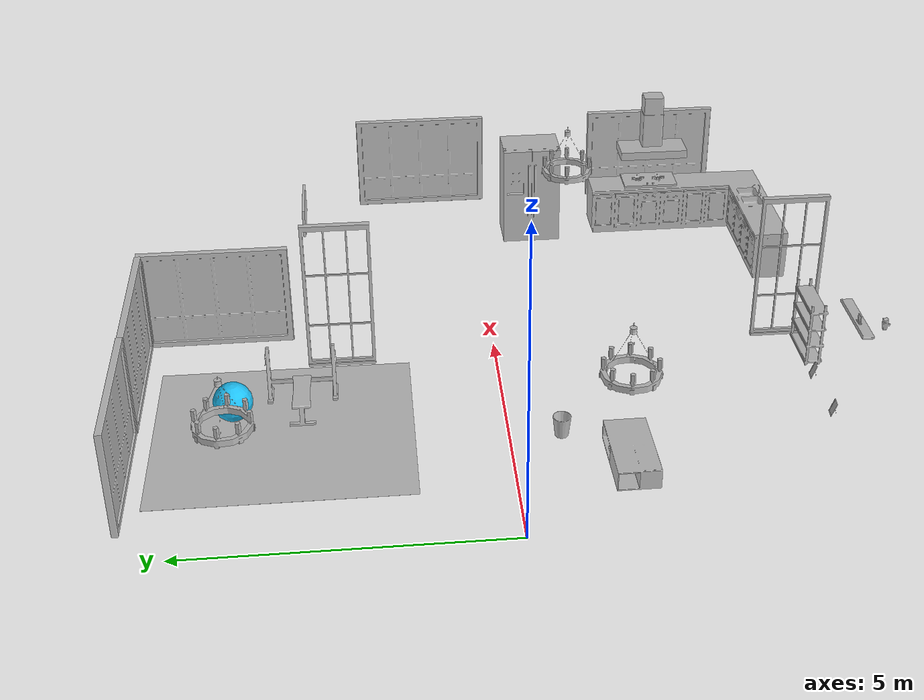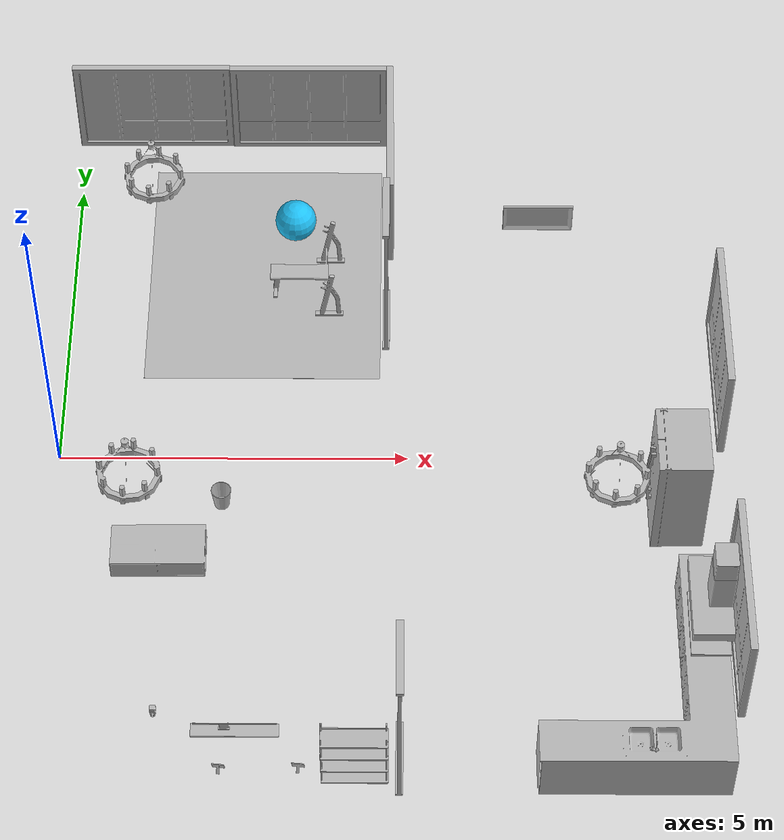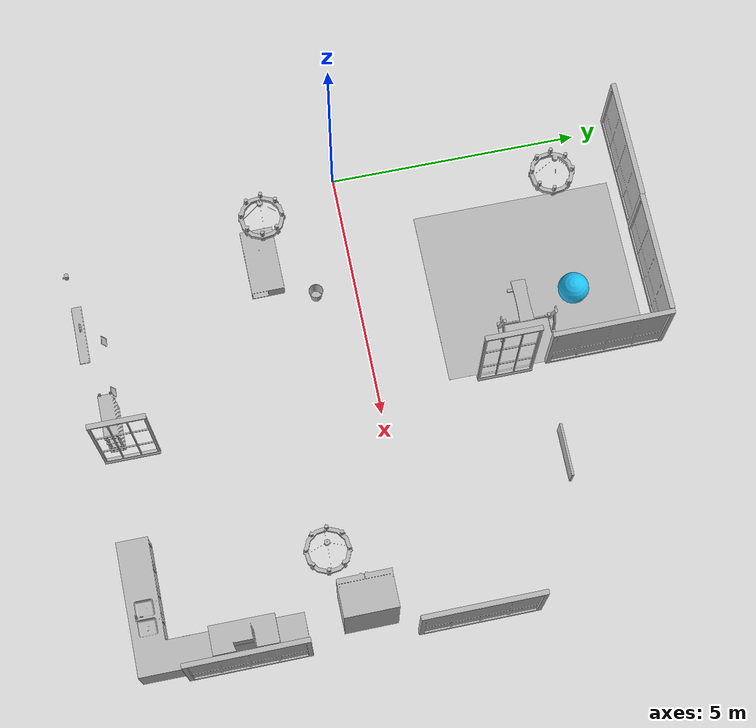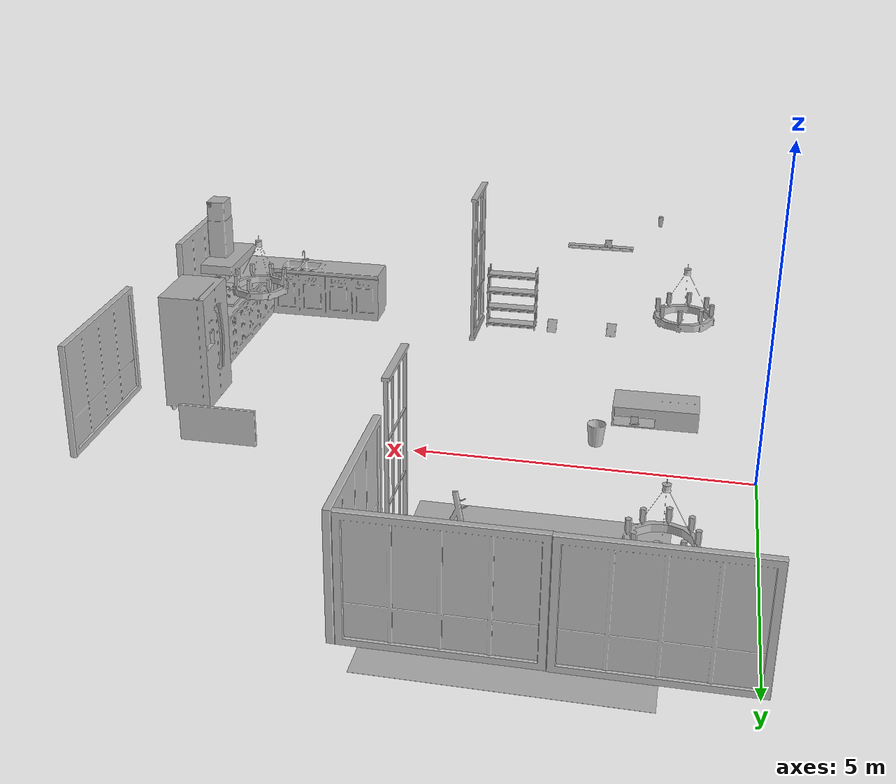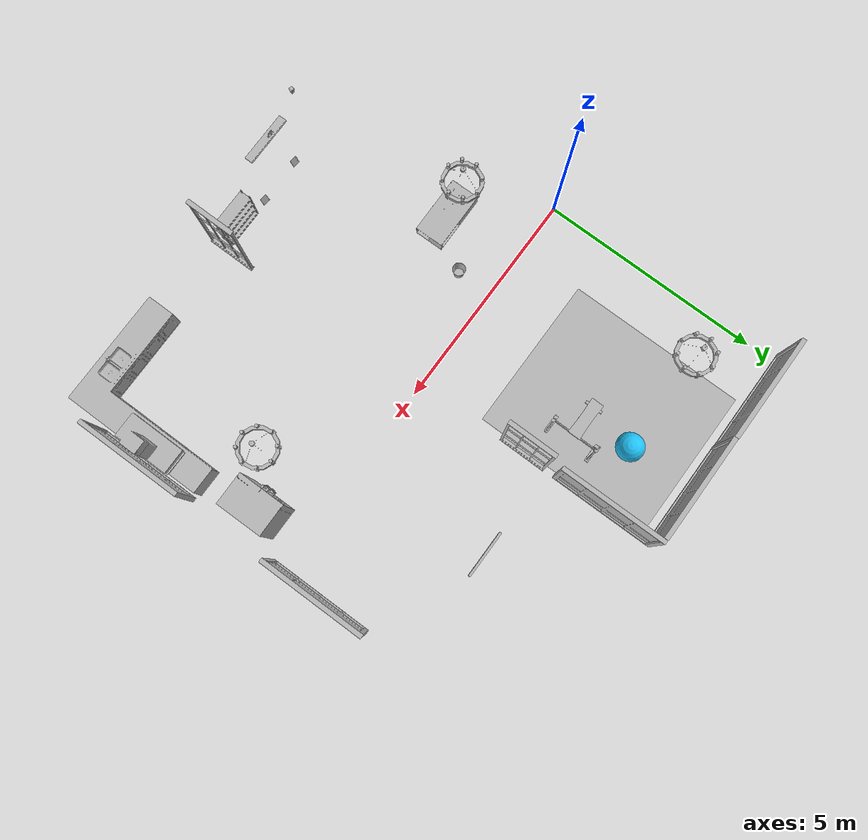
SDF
<sdf version="1.6">
 <world name="default">
  <model name="Ball_01_001">
   <link name="aws_robomaker_residential_Ball_01::link">
    <inertial>
     <mass>0.12</mass>
     <inertia>
      <ixx>0.030752</ixx>
      <ixy>0</ixy>
      <ixz>0</ixz>
      <iyy>0.030752</iyy>
      <iyz>0</iyz>
      <izz>0.030752</izz>
     </inertia>
    </inertial>
    <collision name="collision">
     <geometry><sphere><radius>0.31</radius></sphere></geometry>
     <surface>
      <friction><ode><mu>0.85</mu><mu2>0.85</mu2></ode></friction>
      <contact><ode><kd>8500</kd><max_vel>5.1</max_vel></ode></contact>
     </surface>
    </collision>
    <visual name="visual">
     <geometry><sphere><radius>0.31</radius></sphere></geometry>
     <material><diffuse>0.12 0.76 0.97 1</diffuse><ambient>0.03 0.21 0.27 1</ambient></material>
     <meta><layer>1</layer></meta>
    </visual>
   </link>
   <pose>3.2955 4.22567 0.31 0 -0 0</pose>
  </model>
  <model name="Board_01_001">
   <link name="aws_robomaker_residential_Board_01::link">
    <inertial><mass>1</mass></inertial>
    <collision name="collision">
     <geometry>
      <mesh>
       <uri>file://models/aws_robomaker_residential_Board_01/meshes/aws_Board_01_collision.DAE</uri>
       <scale>1 1 1</scale>
      </mesh>
     </geometry>
    </collision>
    <visual name="visual">
     <geometry>
      <mesh><uri>file://models/aws_robomaker_residential_Board_01/meshes/aws_Board_01_visual.DAE</uri></mesh>
     </geometry>
     <meta><layer>2</layer></meta>
    </visual>
   </link>
   <static>1</static>
   <pose>2.77907 -5.3927 1.53817 0 -0 0</pose>
  </model>
  <model name="Chandelier_01_001">
   <link name="aws_robomaker_residential_Chandelier_01::link">
    <inertial><mass>1</mass></inertial>
    <collision name="collision">
     <geometry>
      <mesh>
       <uri>file://models/aws_robomaker_residential_Chandelier_01/meshes/aws_Chandelier_01_collision.DAE</uri>
       <scale>1 1 1</scale>
      </mesh>
     </geometry>
    </collision>
    <visual name="visual">
     <geometry>
      <mesh>
       <uri>file://models/aws_robomaker_residential_Chandelier_01/meshes/aws_Chandelier_01_visual.DAE</uri>
      </mesh>
     </geometry>
     <meta><layer>2</layer></meta>
    </visual>
   </link>
   <static>1</static>
   <pose>1.22106 4.15574 1.295 0 -0 0</pose>
  </model>
  <model name="Chandelier_01_003">
   <link name="aws_robomaker_residential_Chandelier_01::link">
    <inertial><mass>1</mass></inertial>
    <collision name="collision">
     <geometry>
      <mesh>
       <uri>file://models/aws_robomaker_residential_Chandelier_01/meshes/aws_Chandelier_01_collision.DAE</uri>
       <scale>1 1 1</scale>
      </mesh>
     </geometry>
    </collision>
    <visual name="visual">
     <geometry>
      <mesh>
       <uri>file://models/aws_robomaker_residential_Chandelier_01/meshes/aws_Chandelier_01_visual.DAE</uri>
      </mesh>
     </geometry>
     <meta><layer>2</layer></meta>
    </visual>
   </link>
   <static>1</static>
   <pose>7.82406 -1.59 1.751 0 -0 0</pose>
  </model>
  <model name="Chandelier_01_004">
   <link name="aws_robomaker_residential_Chandelier_01::link">
    <inertial><mass>1</mass></inertial>
    <collision name="collision">
     <geometry>
      <mesh>
       <uri>file://models/aws_robomaker_residential_Chandelier_01/meshes/aws_Chandelier_01_collision.DAE</uri>
       <scale>1 1 1</scale>
      </mesh>
     </geometry>
    </collision>
    <visual name="visual">
     <geometry>
      <mesh>
       <uri>file://models/aws_robomaker_residential_Chandelier_01/meshes/aws_Chandelier_01_visual.DAE</uri>
      </mesh>
     </geometry>
     <meta><layer>2</layer></meta>
    </visual>
   </link>
   <static>1</static>
   <pose>1.22106 -1.59204 1.7873 0 -0 0</pose>
  </model>
  <model name="Carpet_01_002">
   <link name="aws_robomaker_residential_Carpet_01::link">
    <inertial><mass>8.1</mass></inertial>
    <collision name="collision">
     <geometry>
      <mesh>
       <uri>file://models/aws_robomaker_residential_Carpet_01/meshes/aws_Carpet_01_collision.DAE</uri>
       <scale>1 1 0.95</scale>
      </mesh>
     </geometry>
     <pose>0 0 -0.01 0 -0 0</pose>
    </collision>
    <visual name="visual">
     <geometry>
      <mesh><uri>file://models/aws_robomaker_residential_Carpet_01/meshes/aws_Carpet_01_visual.DAE</uri></mesh>
     </geometry>
     <meta><layer>1</layer></meta>
    </visual>
   </link>
   <static>1</static>
   <pose>2.85405 3.45 0.000585 0 -0 0</pose>
  </model>
  <model name="CoffeeTable_01_001">
   <link name="aws_robomaker_residential_CoffeeTable_01::link">
    <inertial>
     <mass>21.7</mass>
     <inertia><ixx>0.81375</ixx><ixy>0</ixy><ixz>0</ixz><iyy>2.76675</iyy><iyz>0</iyz><izz>3.254</izz></inertia>
    </inertial>
    <collision name="collision">
     <geometry>
      <mesh>
       <uri>file://models/aws_robomaker_residential_CoffeeTable_01/meshes/aws_CoffeeTable_01_collision.DAE</uri>
       <scale>1 1 1</scale>
      </mesh>
     </geometry>
     <surface><contact><ode><max_vel>0.01</max_vel></ode></contact></surface>
    </collision>
    <visual name="visual">
     <geometry>
      <mesh>
       <uri>file://models/aws_robomaker_residential_CoffeeTable_01/meshes/aws_CoffeeTable_01_visual.DAE</uri>
      </mesh>
     </geometry>
     <meta><layer>1</layer></meta>
    </visual>
   </link>
   <static>1</static>
   <pose>1.5123 -1.73344 0.041983 0 -0 0.01</pose>
  </model>
  <model name="CookingBench_01_001">
   <link name="aws_robomaker_residential_CookingBench_01::link">
    <inertial><mass>1</mass></inertial>
    <collision name="collision">
     <geometry>
      <mesh>
       <uri>file://models/aws_robomaker_residential_CookingBench_01/meshes/aws_CookingBench_01_collision.DAE</uri>
       <scale>1 1 1</scale>
      </mesh>
     </geometry>
    </collision>
    <visual name="visual">
     <geometry>
      <mesh>
       <uri>file://models/aws_robomaker_residential_CookingBench_01/meshes/aws_CookingBench_01_visual.DAE</uri>
      </mesh>
     </geometry>
     <meta><layer>1</layer></meta>
    </visual>
   </link>
   <pose>9.03838 -3.35114 0.90361 0 -0 3.13713</pose>
   <static>1</static>
  </model>
  <model name="FitnessEquipment_01_001">
   <link name="aws_robomaker_residential_FitnessEquipment_01::link">
    <inertial><mass>80</mass></inertial>
    <collision name="collision">
     <geometry>
      <mesh>
       <uri>file://models/aws_robomaker_residential_FitnessEquipment_01/meshes/aws_FitnessEquipment_01_collision.DAE</uri>
       <scale>1 1 1</scale>
      </mesh>
     </geometry>
    </collision>
    <visual name="visual">
     <geometry>
      <mesh>
       <uri>file://models/aws_robomaker_residential_FitnessEquipment_01/meshes/aws_FitnessEquipment_01_visual.DAE</uri>
      </mesh>
     </geometry>
     <meta><layer>1</layer></meta>
    </visual>
   </link>
   <static>1</static>
   <pose>3.48472 3.1691 0.003168 0 -0 0</pose>
  </model>
  <model name="FoldingDoor_02_001">
   <link name="aws_robomaker_residential_FoldingDoor_02::link">
    <inertial><mass>1</mass></inertial>
    <collision name="collision">
     <geometry>
      <mesh>
       <uri>file://models/aws_robomaker_residential_FoldingDoor_02/meshes/aws_FoldingDoor_02_collision.DAE</uri>
       <scale>1 1 1</scale>
      </mesh>
     </geometry>
    </collision>
    <visual name="visual">
     <geometry>
      <mesh>
       <uri>file://models/aws_robomaker_residential_FoldingDoor_02/meshes/aws_FoldingDoor_02_visual.DAE</uri>
      </mesh>
     </geometry>
     <meta><layer>2</layer></meta>
    </visual>
   </link>
   <static>1</static>
   <pose>4.67423 2.46451 0 0 -0 3.14159</pose>
  </model>
  <model name="FoldingDoor_02_002">
   <link name="aws_robomaker_residential_FoldingDoor_02::link">
    <inertial><mass>1</mass></inertial>
    <collision name="collision">
     <geometry>
      <mesh>
       <uri>file://models/aws_robomaker_residential_FoldingDoor_02/meshes/aws_FoldingDoor_02_collision.DAE</uri>
       <scale>1 1 1</scale>
      </mesh>
     </geometry>
    </collision>
    <visual name="visual">
     <geometry>
      <mesh>
       <uri>file://models/aws_robomaker_residential_FoldingDoor_02/meshes/aws_FoldingDoor_02_visual.DAE</uri>
      </mesh>
     </geometry>
     <meta><layer>2</layer></meta>
    </visual>
   </link>
   <static>1</static>
   <pose>4.8912 -4.84968 0 0 -0 0</pose>
  </model>
  <model name="KitchenCabinet_01_001">
   <link name="aws_robomaker_residential_KitchenCabinet_01::link">
    <inertial><mass>1</mass></inertial>
    <collision name="collision">
     <geometry>
      <mesh>
       <uri>file://models/aws_robomaker_residential_KitchenCabinet_01/meshes/aws_KitchenCabinet_01_collision.DAE</uri>
       <scale>1 1 1</scale>
      </mesh>
     </geometry>
    </collision>
    <visual name="visual">
     <geometry>
      <mesh>
       <uri>file://models/aws_robomaker_residential_KitchenCabinet_01/meshes/aws_KitchenCabinet_01_visual.DAE</uri>
      </mesh>
     </geometry>
     <meta><layer>1</layer></meta>
    </visual>
   </link>
   <static>1</static>
   <pose>8.00201 -3.83651 0.012068 0 0 -3.14</pose>
  </model>
  <model name="LightC_01_001">
   <link name="aws_robomaker_residential_LightC_01::link">
    <inertial><mass>1</mass></inertial>
    <collision name="collision">
     <geometry>
      <mesh>
       <uri>file://models/aws_robomaker_residential_LightC_01/meshes/aws_LightC_01_collision.DAE</uri>
       <scale>1 1 1</scale>
      </mesh>
     </geometry>
    </collision>
    <visual name="visual">
     <geometry>
      <mesh><uri>file://models/aws_robomaker_residential_LightC_01/meshes/aws_LightC_01_visual.DAE</uri></mesh>
     </geometry>
     <meta><layer>2</layer></meta>
    </visual>
   </link>
   <static>1</static>
   <pose>1.76957 -5.44437 2 0 -0 0</pose>
  </model>
  <model name="PortraitD_02">
   <link name="aws_robomaker_residential_PortraitD_02::link">
    <inertial><mass>1.5</mass></inertial>
    <collision name="collision">
     <geometry>
      <mesh>
       <uri>file://models/aws_robomaker_residential_PortraitD_02/meshes/aws_PortraitD_01_collision.DAE</uri>
       <scale>1 1 1</scale>
      </mesh>
     </geometry>
    </collision>
    <visual name="visual">
     <geometry>
      <mesh>
       <uri>file://models/aws_robomaker_residential_PortraitD_02/meshes/aws_PortraitD_01_visual.DAE</uri>
      </mesh>
     </geometry>
     <meta><layer>2</layer></meta>
    </visual>
   </link>
   <static>1</static>
   <pose>6.87018 3.08031 1.48844 0 -0 0</pose>
  </model>
  <model name="DeskPortraitD_01">
   <link name="aws_robomaker_residential_DeskPortraitD_01::link">
    <inertial>
     <mass>0.4</mass>
     <inertia><ixx>0.0616</ixx><ixy>0</ixy><ixz>0</ixz><iyy>0.1313</iyy><iyz>0</iyz><izz>0.0803</izz></inertia>
    </inertial>
    <collision name="collision">
     <geometry>
      <mesh>
       <uri>file://models/aws_robomaker_residential_DeskPortraitD_01/meshes/aws_DeskPortraitD_01_collision.DAE</uri>
       <scale>1 1 1</scale>
      </mesh>
     </geometry>
     <surface>
      <friction><ode><mu>0.7</mu><mu2>0.7</mu2></ode></friction>
      <contact><ode><kd>28500</kd></ode></contact>
     </surface>
    </collision>
    <visual name="visual">
     <geometry>
      <mesh>
       <uri>file://models/aws_robomaker_residential_DeskPortraitD_01/meshes/aws_DeskPortraitD_01_visual.DAE</uri>
      </mesh>
     </geometry>
     <meta><layer>1</layer></meta>
    </visual>
   </link>
   <pose>2.64556 -5.37622 1.57416 0 -1e-06 -3.11283</pose>
  </model>
  <model name="DeskPortraitD_03">
   <link name="aws_robomaker_residential_DeskPortraitD_03::link">
    <inertial>
     <mass>0.4</mass>
     <inertia><ixx>0.0616</ixx><ixy>0</ixy><ixz>0</ixz><iyy>0.1313</iyy><iyz>0</iyz><izz>0.0803</izz></inertia>
    </inertial>
    <collision name="collision">
     <geometry>
      <mesh>
       <uri>file://models/aws_robomaker_residential_DeskPortraitD_03/meshes/aws_DeskPortraitD_01_collision.DAE</uri>
       <scale>1 1 1</scale>
      </mesh>
     </geometry>
     <surface>
      <friction><ode><mu>0.7</mu><mu2>0.7</mu2></ode></friction>
      <contact><ode><kd>28500</kd></ode></contact>
     </surface>
    </collision>
    <visual name="visual">
     <geometry>
      <mesh>
       <uri>file://models/aws_robomaker_residential_DeskPortraitD_03/meshes/aws_DeskPortraitD_01_visual.DAE</uri>
      </mesh>
     </geometry>
     <meta><layer>1</layer></meta>
    </visual>
   </link>
   <pose>1.82673 -1.46488 0.064785 6e-06 -1e-06 -3.11438</pose>
  </model>
  <model name="DeskPortraitB_01">
   <link name="aws_robomaker_residential_DeskPortraitB_01::link">
    <inertial>
     <mass>1</mass>
     <inertia><ixx>0.0135</ixx><ixy>0</ixy><ixz>0</ixz><iyy>0.02</iyy><iyz>0</iyz><izz>0.01347</izz></inertia>
    </inertial>
    <collision name="collision">
     <geometry>
      <mesh>
       <uri>file://models/aws_robomaker_residential_DeskPortraitB_01/meshes/aws_DeskPortraitB_01_collision.DAE</uri>
       <scale>1 1 1</scale>
      </mesh>
     </geometry>
    </collision>
    <visual name="visual">
     <geometry>
      <mesh>
       <uri>file://models/aws_robomaker_residential_DeskPortraitB_01/meshes/aws_DeskPortraitB_01_visual.DAE</uri>
      </mesh>
     </geometry>
     <meta><layer>1</layer></meta>
    </visual>
   </link>
   <pose>3.54719 -5.08591 -0.01266 -0.336624 -2e-06 3.04682</pose>
  </model>
  <model name="DeskPortraitB_02">
   <link name="aws_robomaker_residential_DeskPortraitB_02::link">
    <inertial>
     <mass>1</mass>
     <inertia><ixx>0.0135</ixx><ixy>0</ixy><ixz>0</ixz><iyy>0.02</iyy><iyz>0</iyz><izz>0.01347</izz></inertia>
    </inertial>
    <collision name="collision">
     <geometry>
      <mesh>
       <uri>file://models/aws_robomaker_residential_DeskPortraitB_02/meshes/aws_DeskPortraitB_01_collision.DAE</uri>
       <scale>1 1 1</scale>
      </mesh>
     </geometry>
    </collision>
    <visual name="visual">
     <geometry>
      <mesh>
       <uri>file://models/aws_robomaker_residential_DeskPortraitB_02/meshes/aws_DeskPortraitB_01_visual.DAE</uri>
      </mesh>
     </geometry>
     <meta><layer>1</layer></meta>
    </visual>
   </link>
   <pose>2.48627 -5.10252 -0.01266 -0.336622 0 3.0468</pose>
  </model>
  <model name="Rangehood_01_001">
   <link name="aws_robomaker_residential_Rangehood_01::link">
    <inertial><mass>1</mass></inertial>
    <collision name="collision">
     <geometry>
      <mesh>
       <uri>file://models/aws_robomaker_residential_Rangehood_01/meshes/aws_Rangehood_01_collision.DAE</uri>
       <scale>1 1 1</scale>
      </mesh>
     </geometry>
    </collision>
    <visual name="visual">
     <geometry>
      <mesh>
       <uri>file://models/aws_robomaker_residential_Rangehood_01/meshes/aws_Rangehood_01_visual.DAE</uri>
      </mesh>
     </geometry>
     <meta><layer>2</layer></meta>
    </visual>
   </link>
   <static>1</static>
   <pose>9.01979 -3.36994 1.50761 0 -0 0</pose>
  </model>
  <model name="Refrigerator_01_001">
   <link name="aws_robomaker_residential_Refrigerator_01::link">
    <inertial><mass>1</mass></inertial>
    <collision name="collision">
     <geometry>
      <mesh>
       <uri>file://models/aws_robomaker_residential_Refrigerator_01/meshes/aws_Refrigerator_01_collision.DAE</uri>
       <scale>1 1 1</scale>
      </mesh>
     </geometry>
    </collision>
    <visual name="visual">
     <geometry>
      <mesh>
       <uri>file://models/aws_robomaker_residential_Refrigerator_01/meshes/aws_Refrigerator_01_visual.DAE</uri>
      </mesh>
     </geometry>
     <meta><layer>1</layer></meta>
    </visual>
   </link>
   <static>1</static>
   <pose>8.70273 -1.03203 0 0 0 -1.5635</pose>
  </model>
  <model name="ShoeRack_01_001">
   <link name="aws_robomaker_residential_ShoeRack_01::link">
    <inertial>
     <mass>6</mass>
     <inertia>
      <ixx>0.02</ixx>
      <ixy>0</ixy>
      <ixz>0</ixz>
      <iyy>0.04</iyy>
      <iyz>0</iyz>
      <ixx>0.02</ixx>
      <izz>1</izz>
     </inertia>
    </inertial>
    <collision name="collision">
     <geometry>
      <mesh>
       <uri>file://models/aws_robomaker_residential_ShoeRack_01/meshes/aws_ShoeRack_01_collision.DAE</uri>
       <scale>1 1 1</scale>
      </mesh>
     </geometry>
     <surface>
      <friction><ode><mu>0.2</mu><mu2>0.2</mu2></ode></friction>
      <contact><ode><kd>2500</kd></ode></contact>
     </surface>
    </collision>
    <visual name="visual">
     <geometry>
      <mesh><uri>file://models/aws_robomaker_residential_ShoeRack_01/meshes/aws_ShoeRack_01_visual.DAE</uri></mesh>
     </geometry>
     <meta><layer>1</layer></meta>
    </visual>
   </link>
   <pose>4.29809 -5.17355 0.004454 0 -0 2.3e-05</pose>
  </model>
  <model name="Trash_01_001">
   <link name="aws_robomaker_residential_Trash_01::link">
    <inertial>
     <mass>0.1</mass>
     <inertia><ixy>0</ixy><ixz>0</ixz><iyz>0</iyz><ixx>0.05288</ixx><iyy>0.05288</iyy><izz>0.09132</izz></inertia>
    </inertial>
    <collision name="collision">
     <geometry>
      <mesh>
       <uri>file://models/aws_robomaker_residential_Trash_01/meshes/aws_Trash_01_collision.DAE</uri>
       <scale>1 1 1</scale>
      </mesh>
     </geometry>
    </collision>
    <visual name="visual">
     <geometry>
      <mesh><uri>file://models/aws_robomaker_residential_Trash_01/meshes/aws_Trash_01_visual.DAE</uri></mesh>
     </geometry>
     <meta><layer>1</layer></meta>
    </visual>
   </link>
   <pose>2.36015 -0.796238 0.000904 0 -1e-06 0</pose>
  </model>
  <model name="RoomWindow_01_003">
   <link name="aws_robomaker_residential_RoomWindow_01::link">
    <inertial><mass>1</mass></inertial>
    <collision name="collision">
     <geometry>
      <mesh>
       <uri>file://models/aws_robomaker_residential_RoomWindow_01/meshes/aws_RoomWindow_01_collision.DAE</uri>
       <scale>1 1 1</scale>
      </mesh>
     </geometry>
    </collision>
    <visual name="visual">
     <geometry>
      <mesh>
       <uri>file://models/aws_robomaker_residential_RoomWindow_01/meshes/aws_RoomWindow_01_visual.DAE</uri>
      </mesh>
     </geometry>
     <meta><layer>2</layer></meta>
    </visual>
   </link>
   <static>1</static>
   <pose>9.42262 -3.37398 0.502739 0 0 -3.1361</pose>
  </model>
  <model name="RoomWindow_01_004">
   <link name="aws_robomaker_residential_RoomWindow_01::link">
    <inertial><mass>1</mass></inertial>
    <collision name="collision">
     <geometry>
      <mesh>
       <uri>file://models/aws_robomaker_residential_RoomWindow_01/meshes/aws_RoomWindow_01_collision.DAE</uri>
       <scale>1 1 1</scale>
      </mesh>
     </geometry>
    </collision>
    <visual name="visual">
     <geometry>
      <mesh>
       <uri>file://models/aws_robomaker_residential_RoomWindow_01/meshes/aws_RoomWindow_01_visual.DAE</uri>
      </mesh>
     </geometry>
     <meta><layer>2</layer></meta>
    </visual>
   </link>
   <static>1</static>
   <pose>9.42256 0.96852 0.496581 0 0 -3.1361</pose>
  </model>
  <model name="RoomWindow_01_005">
   <link name="aws_robomaker_residential_RoomWindow_01::link">
    <inertial><mass>1</mass></inertial>
    <collision name="collision">
     <geometry>
      <mesh>
       <uri>file://models/aws_robomaker_residential_RoomWindow_01/meshes/aws_RoomWindow_01_collision.DAE</uri>
       <scale>1 1 1</scale>
      </mesh>
     </geometry>
    </collision>
    <visual name="visual">
     <geometry>
      <mesh>
       <uri>file://models/aws_robomaker_residential_RoomWindow_01/meshes/aws_RoomWindow_01_visual.DAE</uri>
      </mesh>
     </geometry>
     <meta><layer>2</layer></meta>
    </visual>
   </link>
   <static>1</static>
   <pose>4.72232 4.47028 0.502739 0 0 -3.1361</pose>
  </model>
  <model name="RoomWindow_01_006">
   <link name="aws_robomaker_residential_RoomWindow_01::link">
    <inertial><mass>1</mass></inertial>
    <collision name="collision">
     <geometry>
      <mesh>
       <uri>file://models/aws_robomaker_residential_RoomWindow_01/meshes/aws_RoomWindow_01_collision.DAE</uri>
       <scale>1 1 1</scale>
      </mesh>
     </geometry>
    </collision>
    <visual name="visual">
     <geometry>
      <mesh>
       <uri>file://models/aws_robomaker_residential_RoomWindow_01/meshes/aws_RoomWindow_01_visual.DAE</uri>
      </mesh>
     </geometry>
     <meta><layer>2</layer></meta>
    </visual>
   </link>
   <static>1</static>
   <pose>3.48852 5.60069 0.502739 0 0 -1.56627</pose>
  </model>
  <model name="RoomWindow_01_007">
   <link name="aws_robomaker_residential_RoomWindow_01::link">
    <inertial><mass>1</mass></inertial>
    <collision name="collision">
     <geometry>
      <mesh>
       <uri>file://models/aws_robomaker_residential_RoomWindow_01/meshes/aws_RoomWindow_01_collision.DAE</uri>
       <scale>1 1 1</scale>
      </mesh>
     </geometry>
    </collision>
    <visual name="visual">
     <geometry>
      <mesh>
       <uri>file://models/aws_robomaker_residential_RoomWindow_01/meshes/aws_RoomWindow_01_visual.DAE</uri>
      </mesh>
     </geometry>
     <meta><layer>2</layer></meta>
    </visual>
   </link>
   <static>1</static>
   <pose>1.14095 5.60069 0.502739 0 0 -1.56627</pose>
  </model>
 </world>
</sdf>
